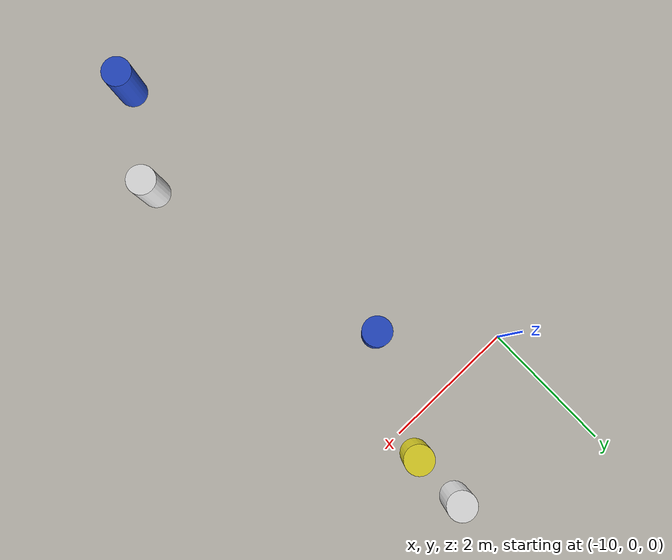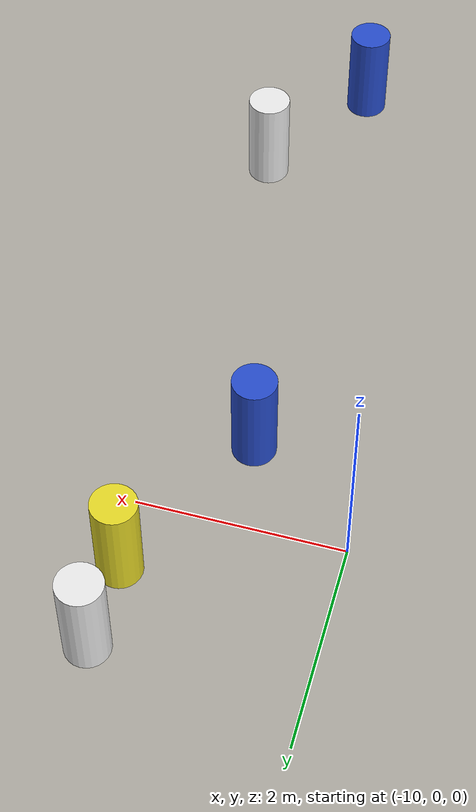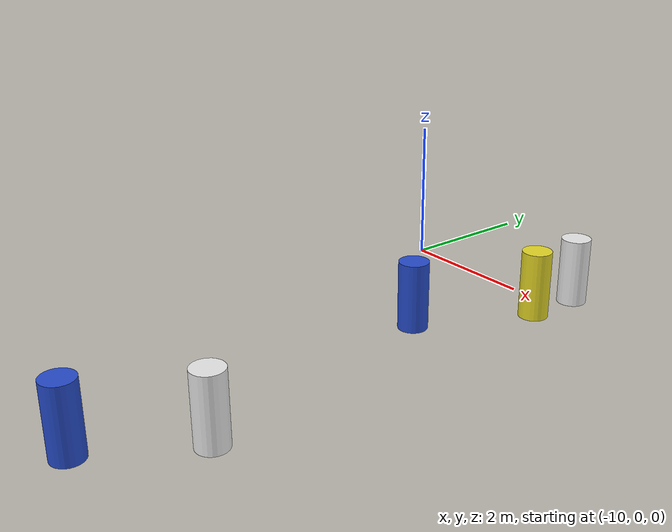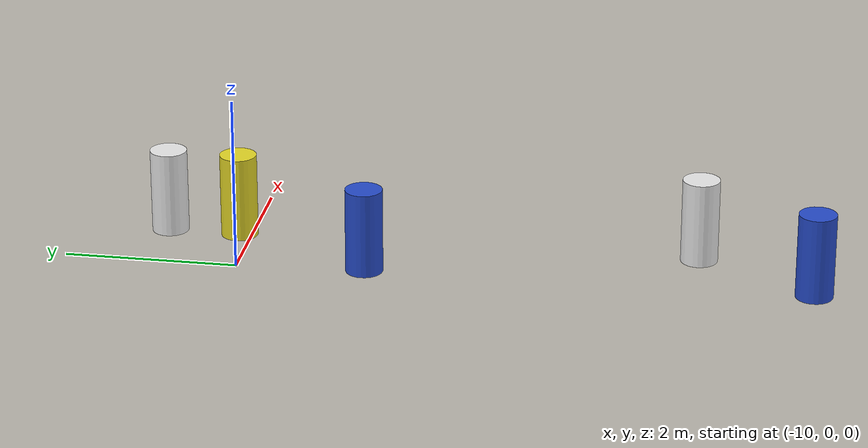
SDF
<sdf version="1.7">
 <world name="IGVC_AutoNav">
  <model name="barrel_7">
   <link name="link">
    <inertial>
     <mass>1</mass>
     <inertia><ixx>0.145833</ixx><ixy>0</ixy><ixz>0</ixz><iyy>0.145833</iyy><iyz>0</iyz><izz>0.125</izz></inertia>
    </inertial>
    <visual name="visual">
     <geometry><cylinder><radius>0.222916</radius><length>1.03567</length></cylinder></geometry>
     <material>
      <script><name>Gazebo/Blue</name><uri>file://media/materials/scripts/gazebo.material</uri></script>
      <shader type="pixel"/>
     </material>
    </visual>
    <collision name="collision">
     <geometry><cylinder><radius>0.222916</radius><length>1.03567</length></cylinder></geometry>
     <surface>
      <friction>
       <ode><mu>1</mu><mu2>1</mu2><fdir1>0 0 0</fdir1><slip1>0</slip1><slip2>0</slip2></ode>
       <torsional>
        <coefficient>1</coefficient>
        <patch_radius>0</patch_radius>
        <surface_radius>0</surface_radius>
        <use_patch_radius>1</use_patch_radius>
        <ode><slip>0</slip></ode>
       </torsional>
      </friction>
      <bounce><restitution_coefficient>0</restitution_coefficient><threshold>1e+06</threshold></bounce>
      <contact>
       <collide_without_contact>0</collide_without_contact>
       <collide_without_contact_bitmask>1</collide_without_contact_bitmask>
       <collide_bitmask>1</collide_bitmask>
       <ode>
        <soft_cfm>0</soft_cfm>
        <soft_erp>0.2</soft_erp>
        <kp>1e+13</kp>
        <kd>1</kd>
        <max_vel>0.01</max_vel>
        <min_depth>0</min_depth>
       </ode>
       <bullet>
        <split_impulse>1</split_impulse>
        <split_impulse_penetration_threshold>-0.01</split_impulse_penetration_threshold>
        <soft_cfm>0</soft_cfm>
        <soft_erp>0.2</soft_erp>
        <kp>1e+13</kp>
        <kd>1</kd>
       </bullet>
      </contact>
     </surface>
    </collision>
   </link>
   <static>0</static>
   <pose>-8.69384 -6.54838 0 0 -0 0</pose>
  </model>
  <model name="barrel_8">
   <link name="link">
    <inertial>
     <mass>1</mass>
     <inertia><ixx>0.145833</ixx><ixy>0</ixy><ixz>0</ixz><iyy>0.145833</iyy><iyz>0</iyz><izz>0.125</izz></inertia>
    </inertial>
    <visual name="visual">
     <geometry><cylinder><radius>0.222916</radius><length>1.03567</length></cylinder></geometry>
     <material>
      <script><name>Gazebo/White</name><uri>file://media/materials/scripts/gazebo.material</uri></script>
      <shader type="pixel"/>
     </material>
    </visual>
    <collision name="collision">
     <geometry><cylinder><radius>0.222916</radius><length>1.03567</length></cylinder></geometry>
     <surface>
      <friction>
       <ode><mu>1</mu><mu2>1</mu2><fdir1>0 0 0</fdir1><slip1>0</slip1><slip2>0</slip2></ode>
       <torsional>
        <coefficient>1</coefficient>
        <patch_radius>0</patch_radius>
        <surface_radius>0</surface_radius>
        <use_patch_radius>1</use_patch_radius>
        <ode><slip>0</slip></ode>
       </torsional>
      </friction>
      <bounce><restitution_coefficient>0</restitution_coefficient><threshold>1e+06</threshold></bounce>
      <contact>
       <collide_without_contact>0</collide_without_contact>
       <collide_without_contact_bitmask>1</collide_without_contact_bitmask>
       <collide_bitmask>1</collide_bitmask>
       <ode>
        <soft_cfm>0</soft_cfm>
        <soft_erp>0.2</soft_erp>
        <kp>1e+13</kp>
        <kd>1</kd>
        <max_vel>0.01</max_vel>
        <min_depth>0</min_depth>
       </ode>
       <bullet>
        <split_impulse>1</split_impulse>
        <split_impulse_penetration_threshold>-0.01</split_impulse_penetration_threshold>
        <soft_cfm>0</soft_cfm>
        <soft_erp>0.2</soft_erp>
        <kp>1e+13</kp>
        <kd>1</kd>
       </bullet>
      </contact>
     </surface>
    </collision>
   </link>
   <static>0</static>
   <pose>-7.87307 -5.14972 0 0 -0 0</pose>
  </model>
  <model name="barrel_10">
   <link name="link">
    <inertial>
     <mass>1</mass>
     <inertia><ixx>0.145833</ixx><ixy>0</ixy><ixz>0</ixz><iyy>0.145833</iyy><iyz>0</iyz><izz>0.125</izz></inertia>
    </inertial>
    <visual name="visual">
     <geometry><cylinder><radius>0.222916</radius><length>1.03567</length></cylinder></geometry>
     <material>
      <script><name>Gazebo/Blue</name><uri>file://media/materials/scripts/gazebo.material</uri></script>
      <shader type="pixel"/>
     </material>
    </visual>
    <collision name="collision">
     <geometry><cylinder><radius>0.222916</radius><length>1.03567</length></cylinder></geometry>
     <surface>
      <friction>
       <ode><mu>1</mu><mu2>1</mu2><fdir1>0 0 0</fdir1><slip1>0</slip1><slip2>0</slip2></ode>
       <torsional>
        <coefficient>1</coefficient>
        <patch_radius>0</patch_radius>
        <surface_radius>0</surface_radius>
        <use_patch_radius>1</use_patch_radius>
        <ode><slip>0</slip></ode>
       </torsional>
      </friction>
      <bounce><restitution_coefficient>0</restitution_coefficient><threshold>1e+06</threshold></bounce>
      <contact>
       <collide_without_contact>0</collide_without_contact>
       <collide_without_contact_bitmask>1</collide_without_contact_bitmask>
       <collide_bitmask>1</collide_bitmask>
       <ode>
        <soft_cfm>0</soft_cfm>
        <soft_erp>0.2</soft_erp>
        <kp>1e+13</kp>
        <kd>1</kd>
        <max_vel>0.01</max_vel>
        <min_depth>0</min_depth>
       </ode>
       <bullet>
        <split_impulse>1</split_impulse>
        <split_impulse_penetration_threshold>-0.01</split_impulse_penetration_threshold>
        <soft_cfm>0</soft_cfm>
        <soft_erp>0.2</soft_erp>
        <kp>1e+13</kp>
        <kd>1</kd>
       </bullet>
      </contact>
     </surface>
    </collision>
   </link>
   <static>0</static>
   <pose>-8.77961 -1.26823 0 0 -0 0</pose>
  </model>
  <model name="barrel_11">
   <link name="link">
    <inertial>
     <mass>1</mass>
     <inertia><ixx>0.145833</ixx><ixy>0</ixy><ixz>0</ixz><iyy>0.145833</iyy><iyz>0</iyz><izz>0.125</izz></inertia>
    </inertial>
    <visual name="visual">
     <geometry><cylinder><radius>0.222916</radius><length>1.03567</length></cylinder></geometry>
     <material>
      <script><name>Gazebo/Yellow</name><uri>file://media/materials/scripts/gazebo.material</uri></script>
      <shader type="pixel"/>
     </material>
    </visual>
    <collision name="collision">
     <geometry><cylinder><radius>0.222916</radius><length>1.03567</length></cylinder></geometry>
     <surface>
      <friction>
       <ode><mu>1</mu><mu2>1</mu2><fdir1>0 0 0</fdir1><slip1>0</slip1><slip2>0</slip2></ode>
       <torsional>
        <coefficient>1</coefficient>
        <patch_radius>0</patch_radius>
        <surface_radius>0</surface_radius>
        <use_patch_radius>1</use_patch_radius>
        <ode><slip>0</slip></ode>
       </torsional>
      </friction>
      <bounce><restitution_coefficient>0</restitution_coefficient><threshold>1e+06</threshold></bounce>
      <contact>
       <collide_without_contact>0</collide_without_contact>
       <collide_without_contact_bitmask>1</collide_without_contact_bitmask>
       <collide_bitmask>1</collide_bitmask>
       <ode>
        <soft_cfm>0</soft_cfm>
        <soft_erp>0.2</soft_erp>
        <kp>1e+13</kp>
        <kd>1</kd>
        <max_vel>0.01</max_vel>
        <min_depth>0</min_depth>
       </ode>
       <bullet>
        <split_impulse>1</split_impulse>
        <split_impulse_penetration_threshold>-0.01</split_impulse_penetration_threshold>
        <soft_cfm>0</soft_cfm>
        <soft_erp>0.2</soft_erp>
        <kp>1e+13</kp>
        <kd>1</kd>
       </bullet>
      </contact>
     </surface>
    </collision>
   </link>
   <static>0</static>
   <pose>-7.95424 0.411738 0 0 -0 0</pose>
  </model>
  <model name="barrel_15">
   <link name="link">
    <inertial>
     <mass>1</mass>
     <inertia><ixx>0.145833</ixx><ixy>0</ixy><ixz>0</ixz><iyy>0.145833</iyy><iyz>0</iyz><izz>0.125</izz></inertia>
    </inertial>
    <visual name="visual">
     <geometry><cylinder><radius>0.222916</radius><length>1.03567</length></cylinder></geometry>
     <material>
      <script><name>Gazebo/White</name><uri>file://media/materials/scripts/gazebo.material</uri></script>
      <shader type="pixel"/>
     </material>
    </visual>
    <collision name="collision">
     <geometry><cylinder><radius>0.222916</radius><length>1.03567</length></cylinder></geometry>
     <surface>
      <friction>
       <ode><mu>1</mu><mu2>1</mu2><fdir1>0 0 0</fdir1><slip1>0</slip1><slip2>0</slip2></ode>
       <torsional>
        <coefficient>1</coefficient>
        <patch_radius>0</patch_radius>
        <surface_radius>0</surface_radius>
        <use_patch_radius>1</use_patch_radius>
        <ode><slip>0</slip></ode>
       </torsional>
      </friction>
      <bounce><restitution_coefficient>0</restitution_coefficient><threshold>1e+06</threshold></bounce>
      <contact>
       <collide_without_contact>0</collide_without_contact>
       <collide_without_contact_bitmask>1</collide_without_contact_bitmask>
       <collide_bitmask>1</collide_bitmask>
       <ode>
        <soft_cfm>0</soft_cfm>
        <soft_erp>0.2</soft_erp>
        <kp>1e+13</kp>
        <kd>1</kd>
        <max_vel>0.01</max_vel>
        <min_depth>0</min_depth>
       </ode>
       <bullet>
        <split_impulse>1</split_impulse>
        <split_impulse_penetration_threshold>-0.01</split_impulse_penetration_threshold>
        <soft_cfm>0</soft_cfm>
        <soft_erp>0.2</soft_erp>
        <kp>1e+13</kp>
        <kd>1</kd>
       </bullet>
      </contact>
     </surface>
    </collision>
   </link>
   <static>0</static>
   <pose>-7.93751 1.27262 0 0 -0 0</pose>
  </model>
 </world>
</sdf>
